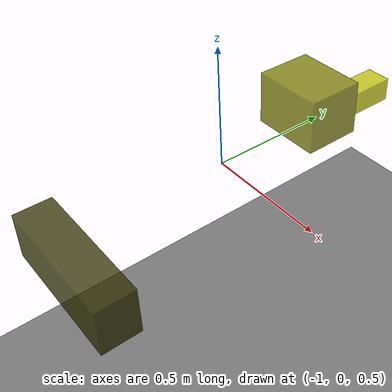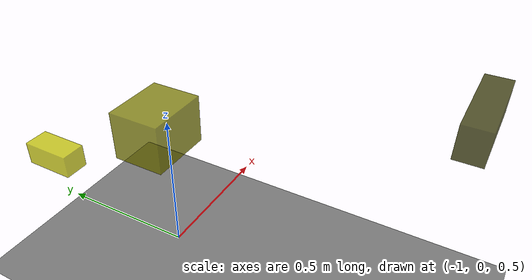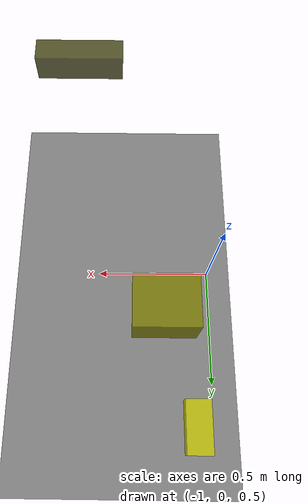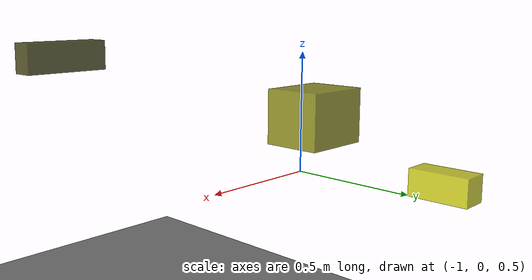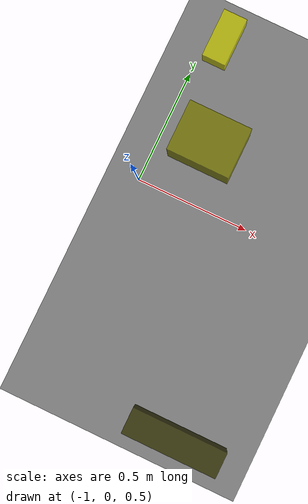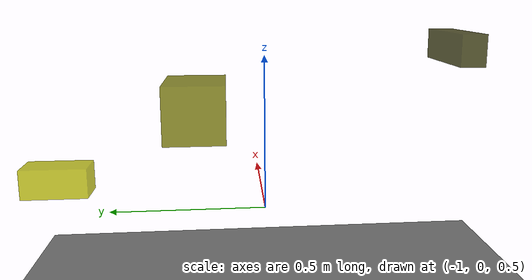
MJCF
<?xml version="1.0"?>
<mujoco model="obstacle_scene">
  <compiler angle="radian" coordinate="local"/>
  <option timestep="0.001" gravity="0 0 -9.81"/>

  <asset>
    <material name="obstacle_mat" rgba="0.8 0.8 0.0 0.8"/>
    <material name="ground_mat" rgba="0.5 0.5 0.5 1"/>
  </asset>

  <worldbody>
    <!-- Ground plane -->
    <geom name="ground" type="plane" size="3 3 0.1" material="ground_mat"/>

    <!-- Obstacles -->
    <body name="obstacle_0" pos="-0.406602 -0.859163 0.965403">
      <geom name="obs_0" type="box" size="0.191609 0.051518 0.065615" rgba="0.2 0.2 0.0 0.8"/>
    </body>
    <body name="obstacle_1" pos="-0.782994 0.230234 0.789481">
      <geom name="obs_1" type="box" size="0.132887 0.106419 0.101203" rgba="0.5 0.5 0.0 0.8"/>
    </body>
    <body name="obstacle_2" pos="-0.922999 0.677075 0.589200">
      <geom name="obs_2" type="box" size="0.052432 0.106584 0.049203" rgba="0.8 0.8 0.0 0.8"/>
    </body>
  </worldbody>
</mujoco>
